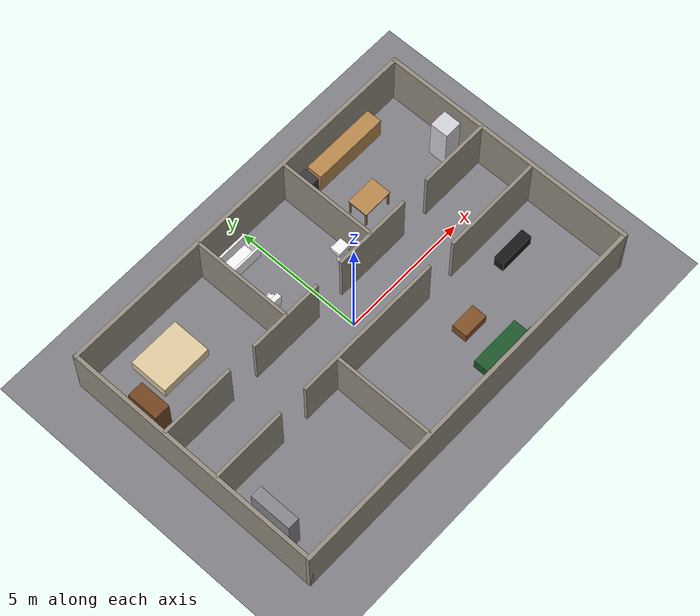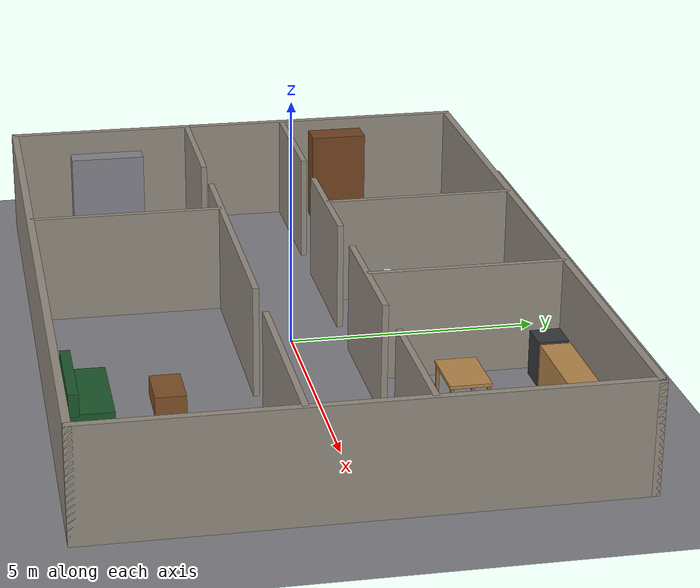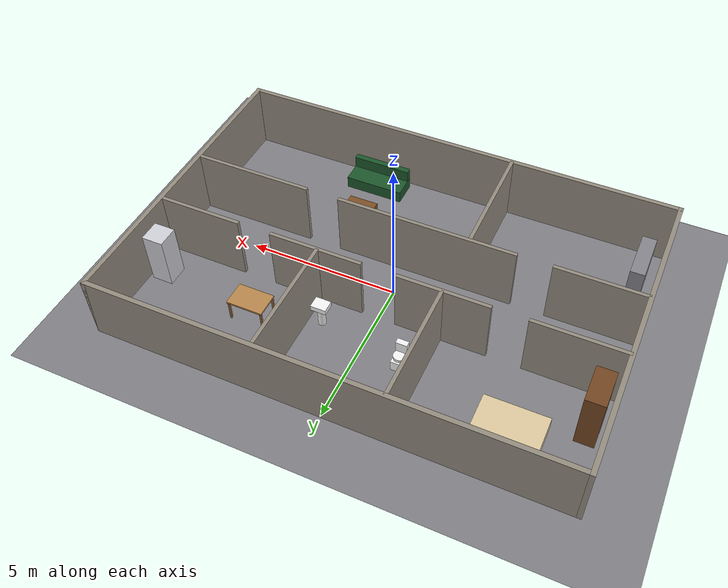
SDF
<sdf version='1.7'>
  <world name='house'>

    <physics name='default_physics' type='ode'>
      <max_step_size>0.001</max_step_size>
      <real_time_factor>1</real_time_factor>
      <real_time_update_rate>1000</real_time_update_rate>
    </physics>

    <plugin filename='gz-sim-physics-system' name='gz::sim::systems::Physics'/>
    <plugin filename='gz-sim-user-commands-system' name='gz::sim::systems::UserCommands'/>
    <plugin filename='gz-sim-scene-broadcaster-system' name='gz::sim::systems::SceneBroadcaster'/>
    <plugin filename='gz-sim-sensors-system' name='gz::sim::systems::Sensors'>
      <render_engine>ogre2</render_engine>
    </plugin>

    <gravity>0 0 -9.8</gravity>
    <magnetic_field>6e-06 2.3e-05 -4.2e-05</magnetic_field>
    <atmosphere type='adiabatic'/>

    <scene>
      <ambient>0.16 0.16 0.18 1</ambient>
      <background>0.10 0.10 0.12 1</background>
      <shadows>false</shadows>
    </scene>

    <model name='ground_plane'>
      <static>true</static>
      <link name='link'>
        <collision name='collision'>
          <geometry>
            <plane>
              <normal>0 0 1</normal>
              <size>100 100</size>
            </plane>
          </geometry>
          <surface>
            <contact>
              <collide_bitmask>65535</collide_bitmask>
              <ode/>
            </contact>
            <friction>
              <ode>
                <mu>100</mu>
                <mu2>50</mu2>
              </ode>
              <torsional>
                <ode/>
              </torsional>
            </friction>
            <bounce/>
          </surface>
          <max_contacts>10</max_contacts>
        </collision>
        <visual name='visual'>
          <cast_shadows>0</cast_shadows>
          <geometry>
            <plane>
              <normal>0 0 1</normal>
              <size>100 100</size>
            </plane>
          </geometry>
          <material>
            <ambient>0.35 0.35 0.36 1</ambient>
            <diffuse>0.50 0.50 0.52 1</diffuse>
            <specular>0.05 0.05 0.05 1</specular>
          </material>
        </visual>
      </link>
    </model>

    <model name='wall_ext_west'>
      <static>true</static>
      <pose>-7.5 0 1.1 0 0 0</pose>
      <link name='link'>
        <collision name='collision'>
          <geometry><box><size>0.15 10.15 2.2</size></box></geometry>
        </collision>
        <visual name='visual'>
          <geometry><box><size>0.15 10.15 2.2</size></box></geometry>
          <material>
            <ambient>0.26 0.25 0.22 1</ambient>
            <diffuse>0.58 0.55 0.50 1</diffuse>
            <specular>0.05 0.05 0.05 1</specular>
          </material>
        </visual>
      </link>
    </model>

    <model name='wall_ext_east'>
      <static>true</static>
      <pose>7.5 0 1.1 0 0 0</pose>
      <link name='link'>
        <collision name='collision'>
          <geometry><box><size>0.15 10.15 2.2</size></box></geometry>
        </collision>
        <visual name='visual'>
          <geometry><box><size>0.15 10.15 2.2</size></box></geometry>
          <material>
            <ambient>0.26 0.25 0.22 1</ambient>
            <diffuse>0.58 0.55 0.50 1</diffuse>
            <specular>0.05 0.05 0.05 1</specular>
          </material>
        </visual>
      </link>
    </model>

    <model name='wall_ext_north'>
      <static>true</static>
      <pose>0 5.0 1.1 0 0 0</pose>
      <link name='link'>
        <collision name='collision'>
          <geometry><box><size>15.15 0.15 2.2</size></box></geometry>
        </collision>
        <visual name='visual'>
          <geometry><box><size>15.15 0.15 2.2</size></box></geometry>
          <material>
            <ambient>0.26 0.25 0.22 1</ambient>
            <diffuse>0.58 0.55 0.50 1</diffuse>
            <specular>0.05 0.05 0.05 1</specular>
          </material>
        </visual>
      </link>
    </model>

    <model name='wall_ext_south'>
      <static>true</static>
      <pose>0 -5.0 1.1 0 0 0</pose>
      <link name='link'>
        <collision name='collision'>
          <geometry><box><size>15.15 0.15 2.2</size></box></geometry>
        </collision>
        <visual name='visual'>
          <geometry><box><size>15.15 0.15 2.2</size></box></geometry>
          <material>
            <ambient>0.26 0.25 0.22 1</ambient>
            <diffuse>0.58 0.55 0.50 1</diffuse>
            <specular>0.05 0.05 0.05 1</specular>
          </material>
        </visual>
      </link>
    </model>

    <model name='wall_north_seg_w'>
      <!-- x -7.50 .. -4.60 : west of the bedroom door -->
      <static>true</static>
      <pose>-6.05 1.1 1.1 0 0 0</pose>
      <link name='link'>
        <collision name='collision'>
          <geometry><box><size>2.90 0.12 2.2</size></box></geometry>
        </collision>
        <visual name='visual'>
          <geometry><box><size>2.90 0.12 2.2</size></box></geometry>
          <material>
            <ambient>0.26 0.25 0.22 1</ambient>
            <diffuse>0.58 0.55 0.50 1</diffuse>
            <specular>0.05 0.05 0.05 1</specular>
          </material>
        </visual>
      </link>
    </model>

    <model name='wall_north_seg_bedroom_bath'>
      <!-- x -3.50 .. -0.55 : between the bedroom and bathroom doors -->
      <static>true</static>
      <pose>-2.025 1.1 1.1 0 0 0</pose>
      <link name='link'>
        <collision name='collision'>
          <geometry><box><size>2.95 0.12 2.2</size></box></geometry>
        </collision>
        <visual name='visual'>
          <geometry><box><size>2.95 0.12 2.2</size></box></geometry>
          <material>
            <ambient>0.26 0.25 0.22 1</ambient>
            <diffuse>0.58 0.55 0.50 1</diffuse>
            <specular>0.05 0.05 0.05 1</specular>
          </material>
        </visual>
      </link>
    </model>

    <model name='wall_north_seg_bath_kitchen'>
      <!-- x +0.55 .. +3.60 : between the bathroom and kitchen doors -->
      <static>true</static>
      <pose>2.075 1.1 1.1 0 0 0</pose>
      <link name='link'>
        <collision name='collision'>
          <geometry><box><size>3.05 0.12 2.2</size></box></geometry>
        </collision>
        <visual name='visual'>
          <geometry><box><size>3.05 0.12 2.2</size></box></geometry>
          <material>
            <ambient>0.26 0.25 0.22 1</ambient>
            <diffuse>0.58 0.55 0.50 1</diffuse>
            <specular>0.05 0.05 0.05 1</specular>
          </material>
        </visual>
      </link>
    </model>

    <model name='wall_north_seg_e'>
      <!-- x +4.70 .. +7.50 : east of the kitchen door -->
      <static>true</static>
      <pose>6.10 1.1 1.1 0 0 0</pose>
      <link name='link'>
        <collision name='collision'>
          <geometry><box><size>2.80 0.12 2.2</size></box></geometry>
        </collision>
        <visual name='visual'>
          <geometry><box><size>2.80 0.12 2.2</size></box></geometry>
          <material>
            <ambient>0.26 0.25 0.22 1</ambient>
            <diffuse>0.58 0.55 0.50 1</diffuse>
            <specular>0.05 0.05 0.05 1</specular>
          </material>
        </visual>
      </link>
    </model>

    <model name='wall_south_seg_w'>
      <!-- x -7.50 .. -4.60 : west of the storage door -->
      <static>true</static>
      <pose>-6.05 -1.1 1.1 0 0 0</pose>
      <link name='link'>
        <collision name='collision'>
          <geometry><box><size>2.90 0.12 2.2</size></box></geometry>
        </collision>
        <visual name='visual'>
          <geometry><box><size>2.90 0.12 2.2</size></box></geometry>
          <material>
            <ambient>0.26 0.25 0.22 1</ambient>
            <diffuse>0.58 0.55 0.50 1</diffuse>
            <specular>0.05 0.05 0.05 1</specular>
          </material>
        </visual>
      </link>
    </model>

    <model name='wall_south_seg_mid'>
      <!-- x -3.50 .. +2.40 : between the storage and living doors -->
      <static>true</static>
      <pose>-0.55 -1.1 1.1 0 0 0</pose>
      <link name='link'>
        <collision name='collision'>
          <geometry><box><size>5.90 0.12 2.2</size></box></geometry>
        </collision>
        <visual name='visual'>
          <geometry><box><size>5.90 0.12 2.2</size></box></geometry>
          <material>
            <ambient>0.26 0.25 0.22 1</ambient>
            <diffuse>0.58 0.55 0.50 1</diffuse>
            <specular>0.05 0.05 0.05 1</specular>
          </material>
        </visual>
      </link>
    </model>

    <model name='wall_south_seg_e'>
      <!-- x +3.50 .. +7.50 : east of the living door -->
      <static>true</static>
      <pose>5.50 -1.1 1.1 0 0 0</pose>
      <link name='link'>
        <collision name='collision'>
          <geometry><box><size>4.00 0.12 2.2</size></box></geometry>
        </collision>
        <visual name='visual'>
          <geometry><box><size>4.00 0.12 2.2</size></box></geometry>
          <material>
            <ambient>0.26 0.25 0.22 1</ambient>
            <diffuse>0.58 0.55 0.50 1</diffuse>
            <specular>0.05 0.05 0.05 1</specular>
          </material>
        </visual>
      </link>
    </model>

    <model name='divider_bedroom_bathroom'>
      <static>true</static>
      <pose>-2.0 3.05 1.1 0 0 0</pose>
      <link name='link'>
        <collision name='collision'>
          <geometry><box><size>0.12 3.90 2.2</size></box></geometry>
        </collision>
        <visual name='visual'>
          <geometry><box><size>0.12 3.90 2.2</size></box></geometry>
          <material>
            <ambient>0.26 0.25 0.22 1</ambient>
            <diffuse>0.58 0.55 0.50 1</diffuse>
            <specular>0.05 0.05 0.05 1</specular>
          </material>
        </visual>
      </link>
    </model>

    <model name='divider_bathroom_kitchen'>
      <static>true</static>
      <pose>2.0 3.05 1.1 0 0 0</pose>
      <link name='link'>
        <collision name='collision'>
          <geometry><box><size>0.12 3.90 2.2</size></box></geometry>
        </collision>
        <visual name='visual'>
          <geometry><box><size>0.12 3.90 2.2</size></box></geometry>
          <material>
            <ambient>0.26 0.25 0.22 1</ambient>
            <diffuse>0.58 0.55 0.50 1</diffuse>
            <specular>0.05 0.05 0.05 1</specular>
          </material>
        </visual>
      </link>
    </model>

    <model name='divider_storage_living'>
      <static>true</static>
      <pose>-2.0 -3.05 1.1 0 0 0</pose>
      <link name='link'>
        <collision name='collision'>
          <geometry><box><size>0.12 3.90 2.2</size></box></geometry>
        </collision>
        <visual name='visual'>
          <geometry><box><size>0.12 3.90 2.2</size></box></geometry>
          <material>
            <ambient>0.26 0.25 0.22 1</ambient>
            <diffuse>0.58 0.55 0.50 1</diffuse>
            <specular>0.05 0.05 0.05 1</specular>
          </material>
        </visual>
      </link>
    </model>

    <model name='kitchen_counter'>
      <static>true</static>
      <pose>4.50 4.55 0.45 0 0 0</pose>
      <link name='link'>
        <collision name='collision'>
          <geometry><box><size>3.00 0.60 0.90</size></box></geometry>
        </collision>
        <visual name='visual'>
          <geometry><box><size>3.00 0.60 0.90</size></box></geometry>
          <material>
            <ambient>0.36 0.26 0.14 1</ambient>
            <diffuse>0.72 0.53 0.30 1</diffuse>
            <specular>0.08 0.08 0.08 1</specular>
          </material>
        </visual>
      </link>
    </model>

    <model name='kitchen_stove'>
      <static>true</static>
      <pose>2.60 4.55 0.45 0 0 0</pose>
      <link name='link'>
        <collision name='collision'>
          <geometry><box><size>0.60 0.60 0.90</size></box></geometry>
        </collision>
        <visual name='visual'>
          <geometry><box><size>0.60 0.60 0.90</size></box></geometry>
          <material>
            <ambient>0.10 0.10 0.11 1</ambient>
            <diffuse>0.22 0.22 0.24 1</diffuse>
            <specular>0.20 0.20 0.20 1</specular>
          </material>
        </visual>
      </link>
    </model>

    <model name='kitchen_fridge'>
      <static>true</static>
      <pose>6.95 2.20 0.90 0 0 0</pose>
      <link name='link'>
        <collision name='collision'>
          <geometry><box><size>0.70 0.70 1.80</size></box></geometry>
        </collision>
        <visual name='visual'>
          <geometry><box><size>0.70 0.70 1.80</size></box></geometry>
          <material>
            <ambient>0.55 0.55 0.57 1</ambient>
            <diffuse>0.82 0.82 0.85 1</diffuse>
            <specular>0.25 0.25 0.25 1</specular>
          </material>
        </visual>
      </link>
    </model>

    <model name='kitchen_table'>
      <static>true</static>
      <pose>3.60 2.60 0 0 0 0</pose>
      <link name='link'>
        <collision name='collision_top'>
          <pose>0 0 0.72 0 0 0</pose>
          <geometry><box><size>1.20 0.80 0.06</size></box></geometry>
        </collision>
        <visual name='visual_top'>
          <pose>0 0 0.72 0 0 0</pose>
          <geometry><box><size>1.20 0.80 0.06</size></box></geometry>
          <material>
            <ambient>0.36 0.26 0.14 1</ambient>
            <diffuse>0.72 0.53 0.30 1</diffuse>
            <specular>0.08 0.08 0.08 1</specular>
          </material>
        </visual>

        <collision name='collision_leg_nw'>
          <pose>-0.55 0.35 0.36 0 0 0</pose>
          <geometry><box><size>0.06 0.06 0.72</size></box></geometry>
        </collision>
        <visual name='visual_leg_nw'>
          <pose>-0.55 0.35 0.36 0 0 0</pose>
          <geometry><box><size>0.06 0.06 0.72</size></box></geometry>
          <material>
            <ambient>0.30 0.21 0.11 1</ambient>
            <diffuse>0.60 0.43 0.24 1</diffuse>
          </material>
        </visual>

        <collision name='collision_leg_ne'>
          <pose>0.55 0.35 0.36 0 0 0</pose>
          <geometry><box><size>0.06 0.06 0.72</size></box></geometry>
        </collision>
        <visual name='visual_leg_ne'>
          <pose>0.55 0.35 0.36 0 0 0</pose>
          <geometry><box><size>0.06 0.06 0.72</size></box></geometry>
          <material>
            <ambient>0.30 0.21 0.11 1</ambient>
            <diffuse>0.60 0.43 0.24 1</diffuse>
          </material>
        </visual>

        <collision name='collision_leg_sw'>
          <pose>-0.55 -0.35 0.36 0 0 0</pose>
          <geometry><box><size>0.06 0.06 0.72</size></box></geometry>
        </collision>
        <visual name='visual_leg_sw'>
          <pose>-0.55 -0.35 0.36 0 0 0</pose>
          <geometry><box><size>0.06 0.06 0.72</size></box></geometry>
          <material>
            <ambient>0.30 0.21 0.11 1</ambient>
            <diffuse>0.60 0.43 0.24 1</diffuse>
          </material>
        </visual>

        <collision name='collision_leg_se'>
          <pose>0.55 -0.35 0.36 0 0 0</pose>
          <geometry><box><size>0.06 0.06 0.72</size></box></geometry>
        </collision>
        <visual name='visual_leg_se'>
          <pose>0.55 -0.35 0.36 0 0 0</pose>
          <geometry><box><size>0.06 0.06 0.72</size></box></geometry>
          <material>
            <ambient>0.30 0.21 0.11 1</ambient>
            <diffuse>0.60 0.43 0.24 1</diffuse>
          </material>
        </visual>
      </link>
    </model>

    <model name='bath_toilet'>
      <static>true</static>
      <pose>-1.30 2.50 0 0 0 0</pose>
      <link name='link'>
        <collision name='collision_base'>
          <pose>0 0 0.18 0 0 0</pose>
          <geometry><box><size>0.36 0.50 0.36</size></box></geometry>
        </collision>
        <visual name='visual_base'>
          <pose>0 0 0.18 0 0 0</pose>
          <geometry><box><size>0.36 0.50 0.36</size></box></geometry>
          <material>
            <ambient>0.70 0.70 0.70 1</ambient>
            <diffuse>0.96 0.96 0.96 1</diffuse>
            <specular>0.30 0.30 0.30 1</specular>
          </material>
        </visual>

        <collision name='collision_bowl'>
          <pose>0 0 0.41 0 0 0</pose>
          <geometry><cylinder><radius>0.19</radius><length>0.10</length></cylinder></geometry>
        </collision>
        <visual name='visual_bowl'>
          <pose>0 0 0.41 0 0 0</pose>
          <geometry><cylinder><radius>0.19</radius><length>0.10</length></cylinder></geometry>
          <material>
            <ambient>0.70 0.70 0.70 1</ambient>
            <diffuse>0.96 0.96 0.96 1</diffuse>
            <specular>0.30 0.30 0.30 1</specular>
          </material>
        </visual>

        <!-- Tank offset -0.22 in y, i.e. on the hallway-wall side of the bowl. -->
        <collision name='collision_tank'>
          <pose>0 -0.22 0.60 0 0 0</pose>
          <geometry><box><size>0.36 0.18 0.45</size></box></geometry>
        </collision>
        <visual name='visual_tank'>
          <pose>0 -0.22 0.60 0 0 0</pose>
          <geometry><box><size>0.36 0.18 0.45</size></box></geometry>
          <material>
            <ambient>0.70 0.70 0.70 1</ambient>
            <diffuse>0.96 0.96 0.96 1</diffuse>
            <specular>0.30 0.30 0.30 1</specular>
          </material>
        </visual>
      </link>
    </model>

    <model name='bath_tub'>
      <!-- Open-topped box: one floor slab plus four 0.08-thick, 0.55-tall
           walls. Left open so a target prop can be dropped inside it. -->
      <static>true</static>
      <pose>-1.00 4.40 0 0 0 0</pose>
      <link name='link'>
        <collision name='collision_floor'>
          <pose>0 0 0.04 0 0 0</pose>
          <geometry><box><size>1.60 0.75 0.08</size></box></geometry>
        </collision>
        <visual name='visual_floor'>
          <pose>0 0 0.04 0 0 0</pose>
          <geometry><box><size>1.60 0.75 0.08</size></box></geometry>
          <material>
            <ambient>0.70 0.70 0.70 1</ambient>
            <diffuse>0.96 0.96 0.96 1</diffuse>
            <specular>0.30 0.30 0.30 1</specular>
          </material>
        </visual>

        <collision name='collision_wall_ypos'>
          <pose>0 0.335 0.355 0 0 0</pose>
          <geometry><box><size>1.60 0.08 0.55</size></box></geometry>
        </collision>
        <visual name='visual_wall_ypos'>
          <pose>0 0.335 0.355 0 0 0</pose>
          <geometry><box><size>1.60 0.08 0.55</size></box></geometry>
          <material>
            <ambient>0.70 0.70 0.70 1</ambient>
            <diffuse>0.96 0.96 0.96 1</diffuse>
            <specular>0.30 0.30 0.30 1</specular>
          </material>
        </visual>

        <collision name='collision_wall_yneg'>
          <pose>0 -0.335 0.355 0 0 0</pose>
          <geometry><box><size>1.60 0.08 0.55</size></box></geometry>
        </collision>
        <visual name='visual_wall_yneg'>
          <pose>0 -0.335 0.355 0 0 0</pose>
          <geometry><box><size>1.60 0.08 0.55</size></box></geometry>
          <material>
            <ambient>0.70 0.70 0.70 1</ambient>
            <diffuse>0.96 0.96 0.96 1</diffuse>
            <specular>0.30 0.30 0.30 1</specular>
          </material>
        </visual>

        <collision name='collision_wall_xneg'>
          <pose>-0.76 0 0.355 0 0 0</pose>
          <geometry><box><size>0.08 0.59 0.55</size></box></geometry>
        </collision>
        <visual name='visual_wall_xneg'>
          <pose>-0.76 0 0.355 0 0 0</pose>
          <geometry><box><size>0.08 0.59 0.55</size></box></geometry>
          <material>
            <ambient>0.70 0.70 0.70 1</ambient>
            <diffuse>0.96 0.96 0.96 1</diffuse>
            <specular>0.30 0.30 0.30 1</specular>
          </material>
        </visual>

        <collision name='collision_wall_xpos'>
          <pose>0.76 0 0.355 0 0 0</pose>
          <geometry><box><size>0.08 0.59 0.55</size></box></geometry>
        </collision>
        <visual name='visual_wall_xpos'>
          <pose>0.76 0 0.355 0 0 0</pose>
          <geometry><box><size>0.08 0.59 0.55</size></box></geometry>
          <material>
            <ambient>0.70 0.70 0.70 1</ambient>
            <diffuse>0.96 0.96 0.96 1</diffuse>
            <specular>0.30 0.30 0.30 1</specular>
          </material>
        </visual>
      </link>
    </model>

    <model name='bath_sink'>
      <static>true</static>
      <pose>1.50 2.00 0 0 0 0</pose>
      <link name='link'>
        <collision name='collision_pedestal'>
          <pose>0 0 0.35 0 0 0</pose>
          <geometry><cylinder><radius>0.12</radius><length>0.70</length></cylinder></geometry>
        </collision>
        <visual name='visual_pedestal'>
          <pose>0 0 0.35 0 0 0</pose>
          <geometry><cylinder><radius>0.12</radius><length>0.70</length></cylinder></geometry>
          <material>
            <ambient>0.70 0.70 0.70 1</ambient>
            <diffuse>0.96 0.96 0.96 1</diffuse>
            <specular>0.30 0.30 0.30 1</specular>
          </material>
        </visual>

        <collision name='collision_basin'>
          <pose>0 0 0.79 0 0 0</pose>
          <geometry><box><size>0.50 0.40 0.18</size></box></geometry>
        </collision>
        <visual name='visual_basin'>
          <pose>0 0 0.79 0 0 0</pose>
          <geometry><box><size>0.50 0.40 0.18</size></box></geometry>
          <material>
            <ambient>0.70 0.70 0.70 1</ambient>
            <diffuse>0.96 0.96 0.96 1</diffuse>
            <specular>0.30 0.30 0.30 1</specular>
          </material>
        </visual>
      </link>
    </model>

    <model name='bedroom_bed'>
      <static>true</static>
      <pose>-5.00 3.50 0.225 0 0 0</pose>
      <link name='link'>
        <collision name='collision'>
          <geometry><box><size>2.00 1.50 0.45</size></box></geometry>
        </collision>
        <visual name='visual'>
          <geometry><box><size>2.00 1.50 0.45</size></box></geometry>
          <material>
            <ambient>0.48 0.43 0.33 1</ambient>
            <diffuse>0.87 0.79 0.62 1</diffuse>
            <specular>0.05 0.05 0.05 1</specular>
          </material>
        </visual>
      </link>
    </model>

    <model name='bedroom_wardrobe'>
      <static>true</static>
      <pose>-7.00 2.30 1.00 0 0 0</pose>
      <link name='link'>
        <collision name='collision'>
          <geometry><box><size>0.60 1.20 2.00</size></box></geometry>
        </collision>
        <visual name='visual'>
          <geometry><box><size>0.60 1.20 2.00</size></box></geometry>
          <material>
            <ambient>0.22 0.13 0.06 1</ambient>
            <diffuse>0.45 0.27 0.13 1</diffuse>
            <specular>0.05 0.05 0.05 1</specular>
          </material>
        </visual>
      </link>
    </model>

    <model name='storage_rack'>
      <static>true</static>
      <pose>-6.90 -3.00 0.90 0 0 0</pose>
      <link name='link'>
        <collision name='collision'>
          <geometry><box><size>0.45 1.60 1.80</size></box></geometry>
        </collision>
        <visual name='visual'>
          <geometry><box><size>0.45 1.60 1.80</size></box></geometry>
          <material>
            <ambient>0.28 0.28 0.29 1</ambient>
            <diffuse>0.52 0.52 0.55 1</diffuse>
            <specular>0.10 0.10 0.10 1</specular>
          </material>
        </visual>
      </link>
    </model>

    <model name='living_sofa'>
      <static>true</static>
      <pose>2.50 -4.30 0 0 0 0</pose>
      <link name='link'>
        <collision name='collision_seat'>
          <pose>0 0 0.21 0 0 0</pose>
          <geometry><box><size>2.00 0.85 0.42</size></box></geometry>
        </collision>
        <visual name='visual_seat'>
          <pose>0 0 0.21 0 0 0</pose>
          <geometry><box><size>2.00 0.85 0.42</size></box></geometry>
          <material>
            <ambient>0.05 0.16 0.08 1</ambient>
            <diffuse>0.11 0.34 0.17 1</diffuse>
            <specular>0.05 0.05 0.05 1</specular>
          </material>
        </visual>

        <!-- Backrest on the -y side, i.e. against the south exterior wall. -->
        <collision name='collision_back'>
          <pose>0 -0.33 0.60 0 0 0</pose>
          <geometry><box><size>2.00 0.20 0.45</size></box></geometry>
        </collision>
        <visual name='visual_back'>
          <pose>0 -0.33 0.60 0 0 0</pose>
          <geometry><box><size>2.00 0.20 0.45</size></box></geometry>
          <material>
            <ambient>0.05 0.16 0.08 1</ambient>
            <diffuse>0.11 0.34 0.17 1</diffuse>
            <specular>0.05 0.05 0.05 1</specular>
          </material>
        </visual>
      </link>
    </model>

    <model name='living_tv_stand'>
      <static>true</static>
      <pose>5.50 -2.10 0.25 0 0 0</pose>
      <link name='link'>
        <collision name='collision'>
          <geometry><box><size>1.40 0.40 0.50</size></box></geometry>
        </collision>
        <visual name='visual'>
          <geometry><box><size>1.40 0.40 0.50</size></box></geometry>
          <material>
            <ambient>0.03 0.03 0.03 1</ambient>
            <diffuse>0.09 0.09 0.10 1</diffuse>
            <specular>0.15 0.15 0.15 1</specular>
          </material>
        </visual>
      </link>
    </model>

    <model name='living_table'>
      <static>true</static>
      <pose>2.50 -2.80 0.20 0 0 0</pose>
      <link name='link'>
        <collision name='collision'>
          <geometry><box><size>1.00 0.60 0.40</size></box></geometry>
        </collision>
        <visual name='visual'>
          <geometry><box><size>1.00 0.60 0.40</size></box></geometry>
          <material>
            <ambient>0.24 0.15 0.07 1</ambient>
            <diffuse>0.50 0.31 0.15 1</diffuse>
            <specular>0.05 0.05 0.05 1</specular>
          </material>
        </visual>
      </link>
    </model>

    <light name='light_hallway_w' type='point'>
      <cast_shadows>false</cast_shadows>
      <pose>-4.50 0.00 2.0 0 0 0</pose>
      <diffuse>0.62 0.60 0.56 1</diffuse>
      <specular>0.10 0.10 0.10 1</specular>
      <attenuation>
        <range>12</range>
        <constant>0.80</constant>
        <linear>0.05</linear>
        <quadratic>0.005</quadratic>
      </attenuation>
    </light>

    <light name='light_hallway_c' type='point'>
      <cast_shadows>false</cast_shadows>
      <pose>0.00 0.00 2.0 0 0 0</pose>
      <diffuse>0.62 0.60 0.56 1</diffuse>
      <specular>0.10 0.10 0.10 1</specular>
      <attenuation>
        <range>12</range>
        <constant>0.80</constant>
        <linear>0.05</linear>
        <quadratic>0.005</quadratic>
      </attenuation>
    </light>

    <light name='light_hallway_e' type='point'>
      <cast_shadows>false</cast_shadows>
      <pose>4.00 0.00 2.0 0 0 0</pose>
      <diffuse>0.62 0.60 0.56 1</diffuse>
      <specular>0.10 0.10 0.10 1</specular>
      <attenuation>
        <range>12</range>
        <constant>0.80</constant>
        <linear>0.05</linear>
        <quadratic>0.005</quadratic>
      </attenuation>
    </light>

    <light name='light_bedroom' type='point'>
      <cast_shadows>false</cast_shadows>
      <pose>-4.70 3.00 2.0 0 0 0</pose>
      <diffuse>0.62 0.60 0.56 1</diffuse>
      <specular>0.10 0.10 0.10 1</specular>
      <attenuation>
        <range>12</range>
        <constant>0.80</constant>
        <linear>0.05</linear>
        <quadratic>0.005</quadratic>
      </attenuation>
    </light>

    <light name='light_bathroom' type='point'>
      <cast_shadows>false</cast_shadows>
      <pose>0.00 3.00 2.0 0 0 0</pose>
      <diffuse>0.62 0.60 0.56 1</diffuse>
      <specular>0.10 0.10 0.10 1</specular>
      <attenuation>
        <range>12</range>
        <constant>0.80</constant>
        <linear>0.05</linear>
        <quadratic>0.005</quadratic>
      </attenuation>
    </light>

    <light name='light_kitchen' type='point'>
      <cast_shadows>false</cast_shadows>
      <pose>4.70 3.00 2.0 0 0 0</pose>
      <diffuse>0.62 0.60 0.56 1</diffuse>
      <specular>0.10 0.10 0.10 1</specular>
      <attenuation>
        <range>12</range>
        <constant>0.80</constant>
        <linear>0.05</linear>
        <quadratic>0.005</quadratic>
      </attenuation>
    </light>

    <light name='light_storage' type='point'>
      <cast_shadows>false</cast_shadows>
      <pose>-4.70 -3.00 2.0 0 0 0</pose>
      <diffuse>0.62 0.60 0.56 1</diffuse>
      <specular>0.10 0.10 0.10 1</specular>
      <attenuation>
        <range>12</range>
        <constant>0.80</constant>
        <linear>0.05</linear>
        <quadratic>0.005</quadratic>
      </attenuation>
    </light>

    <light name='light_living' type='point'>
      <cast_shadows>false</cast_shadows>
      <pose>2.70 -3.00 2.0 0 0 0</pose>
      <diffuse>0.62 0.60 0.56 1</diffuse>
      <specular>0.10 0.10 0.10 1</specular>
      <attenuation>
        <range>12</range>
        <constant>0.80</constant>
        <linear>0.05</linear>
        <quadratic>0.005</quadratic>
      </attenuation>
    </light>

  </world>
</sdf>
